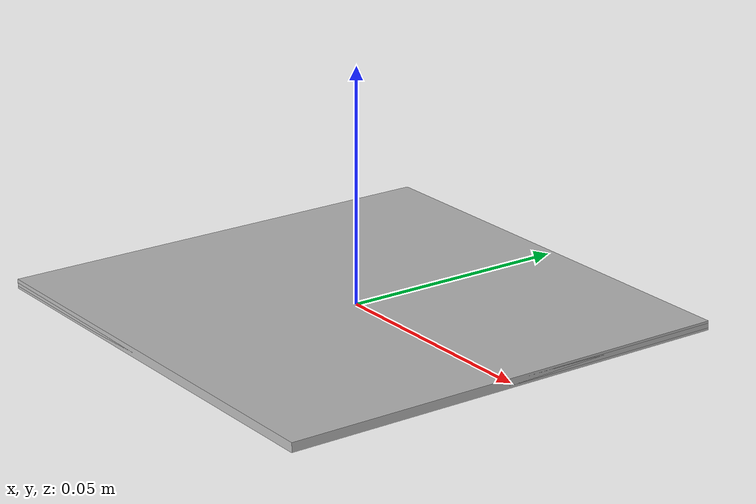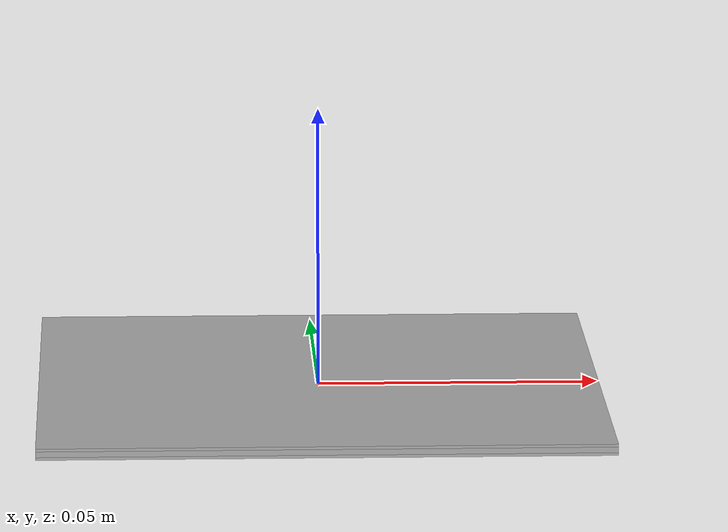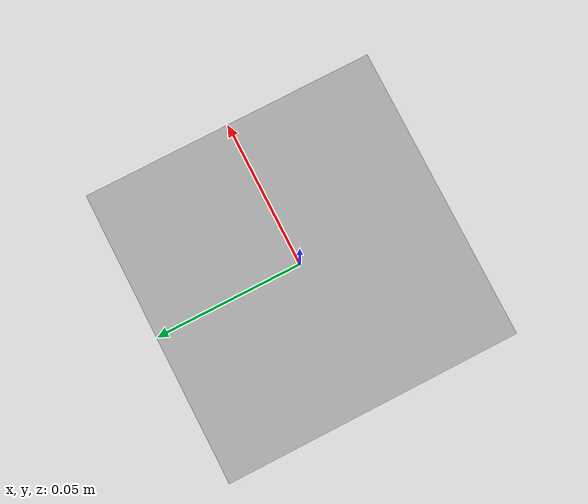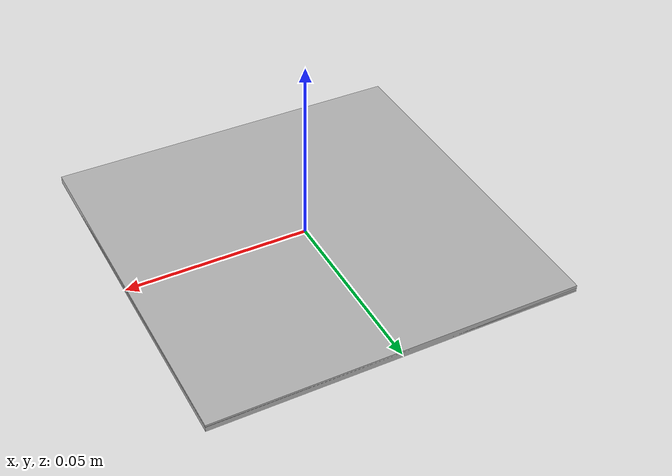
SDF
<?xml version="1.0" ?>
<sdf version="1.4">
  <model name="marker__115">
    <static>true</static>
    <link name="marker">
      <gravity>false</gravity>
      <visual name="tag">
        <geometry>
          <box>
            <size>0.10 0.10 0.002</size>  <!-- changed from 30 to 10 cm -->
          </box>
        </geometry>
        <material>
          <script>
            <uri>model://marker__115/material/scripts</uri>
            <uri>model://marker__115/material/textures</uri>
            <name>marker__115</name>
          </script>
        </material>
      </visual>
      <visual name="support">
        <geometry>
          <box>
            <size>0.10 0.10 0.001</size>  <!-- changed from 32 to 10 cm -->
          </box>
        </geometry>
        <material>Gazebo/White</material>
      </visual>

      <collision name="collision">
        <geometry>
          <box>
            <size>0.10 0.10 0.001</size>  <!-- changed from 32 to 10 cm -->
          </box>
        </geometry>
      </collision>
    </link>
  </model>
</sdf>
